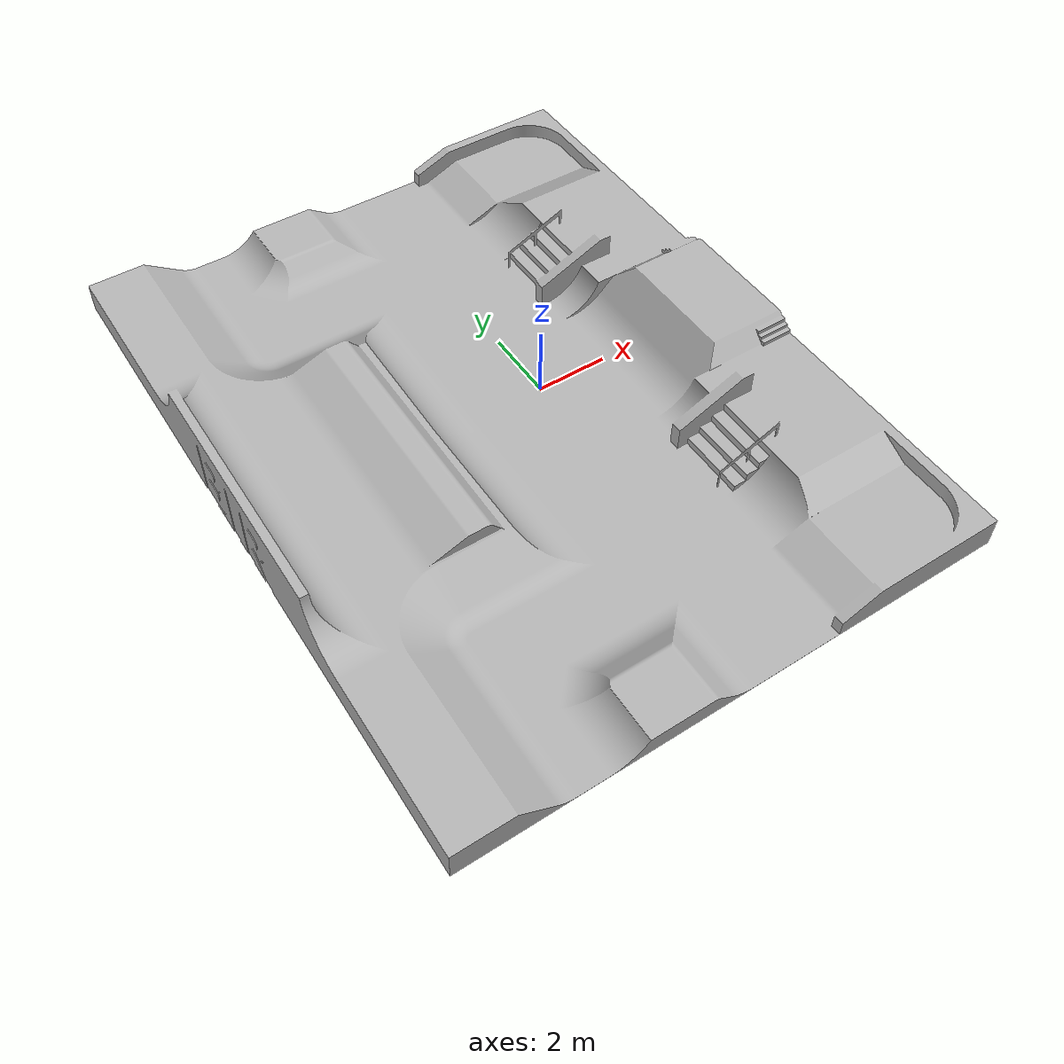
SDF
<?xml version='1.0'?>
<sdf version='1.7'>
  <model name='park'>
    <static>true</static>
    <link name='park_link'>
      <velocity_decay>
        <linear>0</linear>
        <angular>0</angular>
      </velocity_decay>

      <self_collide>0</self_collide>
      <kinematic>0</kinematic>
      <gravity>1</gravity>
      <enable_wind>0</enable_wind>

      <inertial>
        <mass>1067378.53101861</mass>
        <inertia>
          <ixx>26067117.17572724</ixx>
          <ixy>-1494.89502312</ixy>
          <ixz>180787.25167944</ixz>
          <iyy>33004921.99612056</iyy>
          <iyz>78.27570635</iyz>
          <izz>58831850.58800142</izz>
        </inertia>
      </inertial>

      <visual name='park_visual'>
        <geometry>
          <mesh>
            <uri>file://park/meshes/bir_park.dae</uri>
          </mesh>
        </geometry>

        <material>
          <shader type='pixel'/>
        </material>

        <pose>0 0 0 0 -0 0</pose>
        <transparency>0</transparency>
        <cast_shadows>1</cast_shadows>
      </visual>

      <collision name='park_collision'>
        <geometry>
          <mesh>
            <uri>file://park/meshes/bir_park.dae</uri>
          </mesh>
        </geometry>
      </collision>

    </link>

    <allow_auto_disable>1</allow_auto_disable>
  </model>
</sdf>
